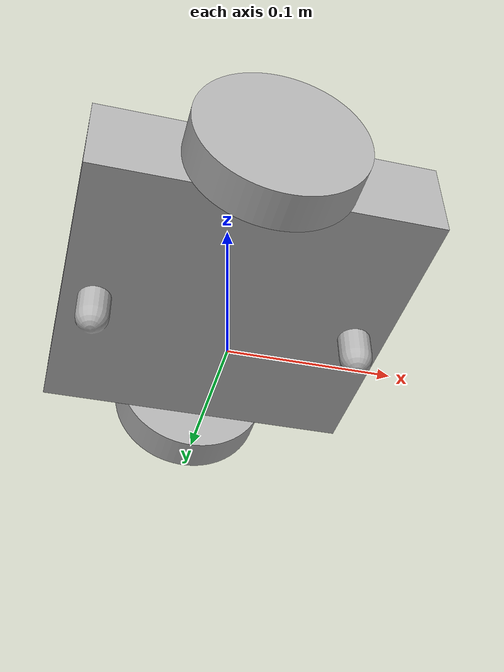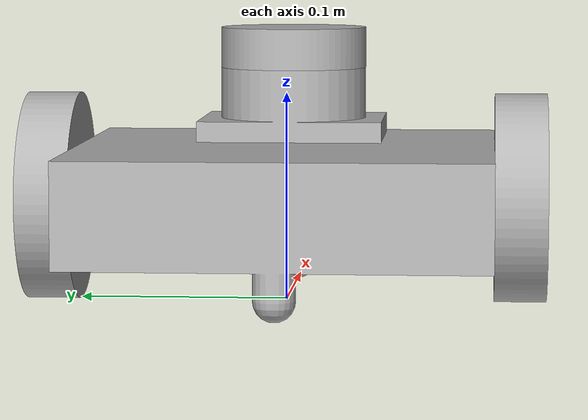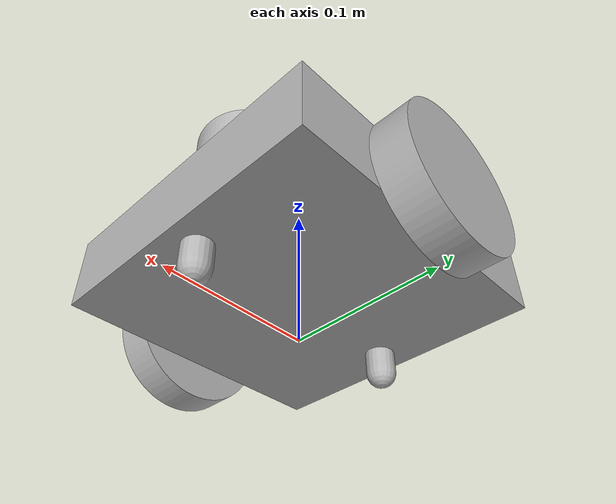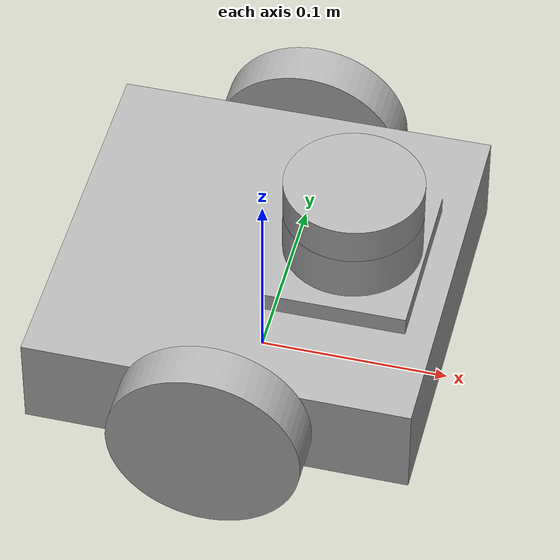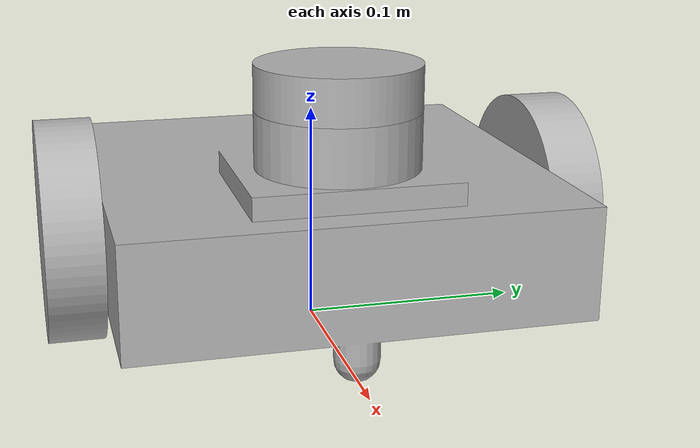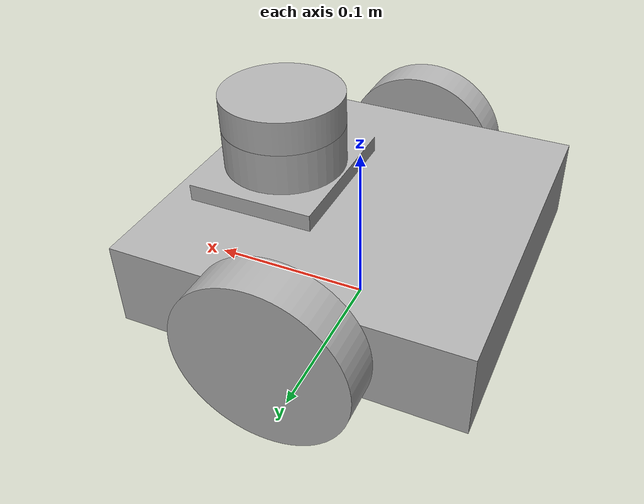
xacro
<?xml version="1.0" ?>
<robot name="mobile_robot" xmlns:xacro="http://www.ros.org/wiki/xacro">

<xacro:include filename="$(find mobile_robot_description)/urdf/materials.xacro" />
<xacro:include filename="$(find mobile_robot_description)/urdf/mobile_robot.trans" />
<xacro:include filename="$(find mobile_robot_description)/urdf/mobile_robot.gazebo" />
<link name="base_link">
  <inertial>
    <origin rpy="0 0 0" xyz="0.003683703689328519 -1.6665797136639413e-17 0.052918293473760994"/>
    <mass value="2.3138752403503777"/>
    <inertia ixx="0.007906" ixy="-0.0" ixz="-0.000321" iyy="0.008357" iyz="-0.0" izz="0.014752"/>
  </inertial>
  <visual>
    <origin rpy="0 0 0" xyz="0 0 0"/>
    <geometry>
      <mesh filename="package://mobile_robot_description/meshes/base_link.stl" scale="0.001 0.001 0.001"/>
    </geometry>
    <material name="silver"/>
  </visual>
  <collision>
    <origin rpy="0 0 0" xyz="0 0 0"/>
    <geometry>
      <mesh filename="package://mobile_robot_description/meshes/base_link.stl" scale="0.001 0.001 0.001"/>
    </geometry>
  </collision>
</link>

<link name="right_wheel_1">
  <inertial>
    <origin rpy="0 0 0" xyz="5.790023100122032e-18 -0.012499999999999997 6.938893903907228e-18"/>
    <mass value="0.18260507298990664"/>
    <inertia ixx="0.000124" ixy="0.0" ixz="-0.0" iyy="0.000228" iyz="-0.0" izz="0.000124"/>
  </inertial>
  <visual>
    <origin rpy="0 0 0" xyz="-0.0 0.1 -0.05"/>
    <geometry>
      <mesh filename="package://mobile_robot_description/meshes/right_wheel_1.stl" scale="0.001 0.001 0.001"/>
    </geometry>
    <material name="silver"/>
  </visual>
  <collision>
    <origin rpy="0 0 0" xyz="-0.0 0.1 -0.05"/>
    <geometry>
      <mesh filename="package://mobile_robot_description/meshes/right_wheel_1.stl" scale="0.001 0.001 0.001"/>
    </geometry>
  </collision>
</link>

<link name="left_wheel_1">
  <inertial>
    <origin rpy="0 0 0" xyz="5.790023100122032e-18 0.012500000000000025 6.938893903907228e-18"/>
    <mass value="0.18260507298990664"/>
    <inertia ixx="0.000124" ixy="0.0" ixz="-0.0" iyy="0.000228" iyz="0.0" izz="0.000124"/>
  </inertial>
  <visual>
    <origin rpy="0 0 0" xyz="-0.0 -0.1 -0.05"/>
    <geometry>
      <mesh filename="package://mobile_robot_description/meshes/left_wheel_1.stl" scale="0.001 0.001 0.001"/>
    </geometry>
    <material name="silver"/>
  </visual>
  <collision>
    <origin rpy="0 0 0" xyz="-0.0 -0.1 -0.05"/>
    <geometry>
      <mesh filename="package://mobile_robot_description/meshes/left_wheel_1.stl" scale="0.001 0.001 0.001"/>
    </geometry>
  </collision>
</link>

<link name="lidar_1">
  <inertial>
    <origin rpy="0 0 0" xyz="6.938893903907228e-18 0.0 0.009999999999999995"/>
    <mass value="0.11237351258184547"/>
    <inertia ixx="4e-05" ixy="0.0" ixz="0.0" iyy="4e-05" iyz="0.0" izz="7.3e-05"/>
  </inertial>
  <visual>
    <origin rpy="0 0 0" xyz="-0.0475 -0.0 -0.11"/>
    <geometry>
      <mesh filename="package://mobile_robot_description/meshes/lidar_1.stl" scale="0.001 0.001 0.001"/>
    </geometry>
    <material name="silver"/>
  </visual>
  <collision>
    <origin rpy="0 0 0" xyz="-0.0475 -0.0 -0.11"/>
    <geometry>
      <mesh filename="package://mobile_robot_description/meshes/lidar_1.stl" scale="0.001 0.001 0.001"/>
    </geometry>
  </collision>
</link>

<joint name="Rev1" type="continuous">
  <origin rpy="0 0 0" xyz="0.0 -0.1 0.05"/>
  <parent link="base_link"/>
  <child link="right_wheel_1"/>
  <axis xyz="0.0 1.0 0.0"/>
</joint>

<joint name="Rev2" type="continuous">
  <origin rpy="0 0 0" xyz="0.0 0.1 0.05"/>
  <parent link="base_link"/>
  <child link="left_wheel_1"/>
  <axis xyz="0.0 1.0 0.0"/>
</joint>

<joint name="Rigid3" type="fixed">
  <origin rpy="0 0 0" xyz="0.0475 0.0 0.11"/>
  <parent link="base_link"/>
  <child link="lidar_1"/>
</joint>

</robot>

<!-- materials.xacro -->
<robot name="mobile_robot" xmlns:xacro="http://www.ros.org/wiki/xacro" >

<material name="silver">
  <color rgba="0.700 0.700 0.700 1.000"/>
</material>

</robot>

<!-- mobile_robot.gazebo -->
<robot name="mobile_robot" xmlns:xacro="http://www.ros.org/wiki/xacro" >

<xacro:property name="body_color" value="Gazebo/Silver" />

<gazebo>
  <plugin filename="libgazebo_ros_control.so" name="control"/>
</gazebo>
<gazebo reference="base_link">
  <material>${body_color}</material>
  <mu1>0.1</mu1>
  <mu2>0.1</mu2>
  <selfCollide>true</selfCollide>
  <gravity>true</gravity>
</gazebo>

<gazebo reference="right_wheel_1">
  <material>${body_color}</material>
  <mu1>1500</mu1>
  <mu2>1500</mu2>
  <selfCollide>true</selfCollide>
</gazebo>

<gazebo reference="left_wheel_1">
  <material>${body_color}</material>
  <mu1>1500</mu1>
  <mu2>1500</mu2>
  <selfCollide>true</selfCollide>
</gazebo>

<gazebo reference="lidar_1">
  <material>${body_color}</material>
  <mu1>0.2</mu1>
  <mu2>0.2</mu2>
  <selfCollide>true</selfCollide>
</gazebo>
<gazebo>
  <plugin name="differential_drive_controller" filename="libgazebo_ros_diff_drive.so">

    <!-- Plugin update rate in Hz -->
    <updateRate>100</updateRate>

    <!-- Name of left joint, defaults to `left_joint` -->
    <leftJoint>Rev2</leftJoint>

    <!-- Name of right joint, defaults to `right_joint` -->
    <rightJoint>Rev1</rightJoint>

    <!-- The distance from the center of one wheel to the other, in meters, defaults to 0.34 m -->
    <wheelSeparation>0.2</wheelSeparation>

    <!-- Diameter of the wheels, in meters, defaults to 0.15 m -->
    <wheelDiameter>0.1</wheelDiameter>

    <!-- Wheel acceleration, in rad/s^2, defaults to 0.0 rad/s^2 -->
    <wheelAcceleration>1.0</wheelAcceleration>

    <!-- Maximum torque which the wheels can produce, in Nm, defaults to 5 Nm -->
    <wheelTorque>50</wheelTorque>

    <!-- Topic to receive geometry_msgs/Twist message commands, defaults to `cmd_vel` -->
    <commandTopic>cmd_vel</commandTopic>

    <!-- Topic to publish nav_msgs/Odometry messages, defaults to `odom` -->
    <odometryTopic>odom</odometryTopic>

    <!-- Odometry frame, defaults to `odom` -->
    <odometryFrame>odom</odometryFrame>

    <!-- Robot frame to calculate odometry from, defaults to `base_footprint` -->
    <robotBaseFrame>base_link</robotBaseFrame>

    <!-- Odometry source, 0 for ENCODER, 1 for WORLD, defaults to WORLD -->
    <odometrySource>1</odometrySource>

    <!-- Set to true to publish transforms for the wheel links, defaults to false -->
    <publishWheelTF>false</publishWheelTF>

    <!-- Set to true to publish transforms for the odometry, defaults to true -->
    <publishOdom>true</publishOdom>

    <!-- Set to true to publish sensor_msgs/JointState on /joint_states for the wheel joints, defaults to false -->
    <publishWheelJointState>false</publishWheelJointState>

    <!-- Set to true to swap right and left wheels, defaults to true -->
    <legacyMode>false</legacyMode>
  </plugin>
</gazebo>
  <!-- hokuyo -->
  <gazebo reference="lidar_1">
    <sensor type="ray" name="head_hokuyo_sensor">
      <pose>0 0 0 0 0 0</pose>
      <visualize>true</visualize>
      <update_rate>40</update_rate>
      <ray>
        <scan>
          <horizontal>
            <samples>720</samples>
            <resolution>1</resolution>
            <min_angle>-1.570796</min_angle>
            <max_angle>1.570796</max_angle>
          </horizontal>
        </scan>
        <range>
          <min>0.10</min>
          <max>30.0</max>
          <resolution>0.01</resolution>
        </range>
        <noise>
          <type>gaussian</type>
          <mean>0.0</mean>
          <stddev>0.01</stddev>
        </noise>
      </ray>
      <plugin name="gazebo_ros_head_hokuyo_controller" filename="libgazebo_ros_laser.so">
        <topicName>/scan</topicName>
        <frameName>lidar_1</frameName>
      </plugin>
    </sensor>
  </gazebo>

</robot>
